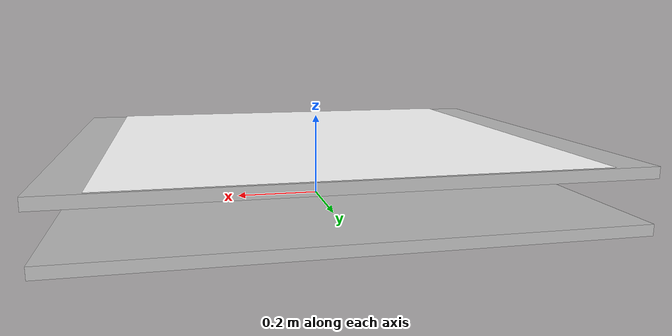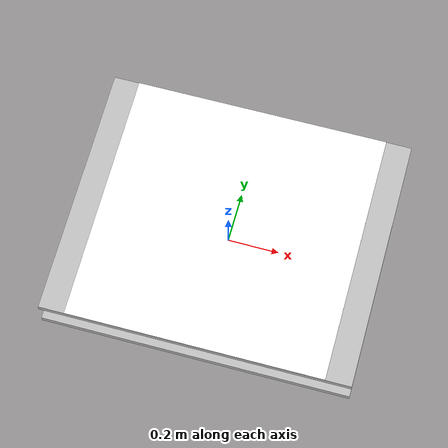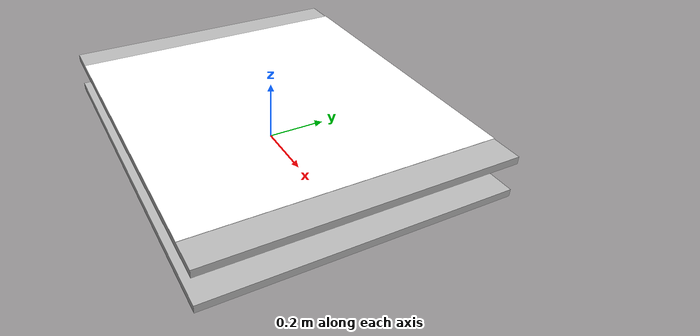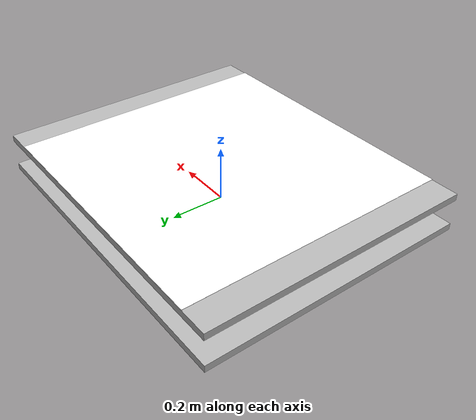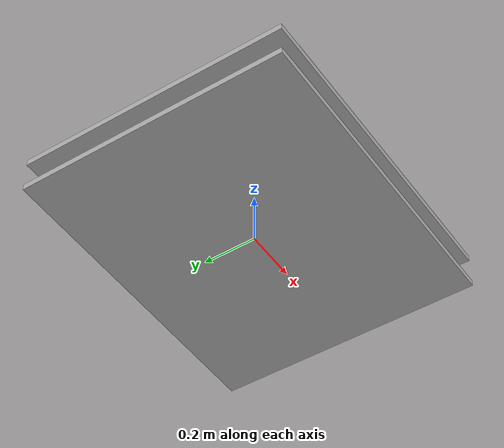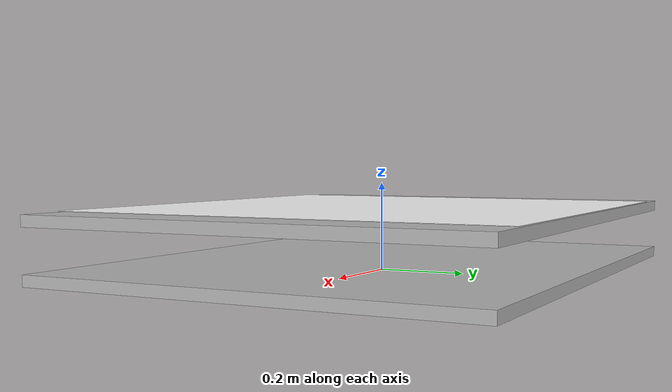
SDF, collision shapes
<?xml version="1.0"?>
<sdf version="1.6">
  <model name="pallet_aruco_0">
    <static>false</static>

    <!-- Link do Pallet -->
    <link name="pallet_link">
      <pose>0 0 0 0 0 0</pose>
      <inertial>
        <mass>15</mass>
        <inertia>
          <ixx>1.25</ixx>
          <iyy>1.80</iyy>
          <izz>2.50</izz>
        </inertia>
      </inertial>

      <!-- Visual do pallet -->
      <visual name="pallet_visual">
        <geometry>
          <mesh>
            <uri>model://Pallet_Standard/base_visual.glb</uri>
          </mesh>
        </geometry>
      </visual>

      <!-- Colisões do pallet (base inferior) -->
      <collision name="pallet_base_bottom">
        <pose>0 0 0.0125 0 0 0</pose>
        <geometry>
          <box>
            <size>1.2 1.0 0.025</size>
          </box>
        </geometry>
      </collision>

      <!-- Colisão da base superior do pallet -->
      <collision name="pallet_base_top">
        <pose>0 0 0.1325 0 0 0</pose>
        <geometry>
          <box>
            <size>1.2 1.0 0.025</size>
          </box>
        </geometry>
      </collision>
    </link>

    <!-- Link do ArUco Marker no topo do pallet -->
    <link name="aruco_link_0">
      <!-- Posicionar o ArUco no topo do pallet (altura ~0.145m) -->
      <pose>0 0 0.146 0 0 0</pose>

      <inertial>
        <mass>0.01</mass>
        <inertia>
          <ixx>0.0001</ixx>
          <iyy>0.0001</iyy>
          <izz>0.0001</izz>
        </inertia>
      </inertial>

      <!-- Plano branco com ArUco 4x4 de 1.0m x 1.0m (menor dimensão do pallet) -->
      <visual name="aruco_visual_0">
        <pose>0 0 0.001 0 0 0</pose>
        <geometry>
          <box>
            <size>1.0 1.0 0.001</size>
          </box>
        </geometry>
        <material>
          <ambient>1 1 1 1</ambient>
          <diffuse>1 1 1 1</diffuse>
          <specular>0.1 0.1 0.1 1</specular>
          <pbr>
            <metal>
              <albedo_map>4x4_1000-0.png</albedo_map>
            </metal>
          </pbr>
        </material>
      </visual>

      <!-- Colisão mínima para o marcador -->
      <collision name="aruco_collision_0">
        <pose>0 0 0.001 0 0 0</pose>
        <geometry>
          <box>
            <size>1.0 1.0 0.001</size>
          </box>
        </geometry>
      </collision>
    </link>

    <!-- Joint fixo entre pallet e ArUco -->
    <joint name="pallet_aruco_joint_0" type="fixed">
      <parent>pallet_link</parent>
      <child>aruco_link_0</child>
    </joint>

  </model>
</sdf>
